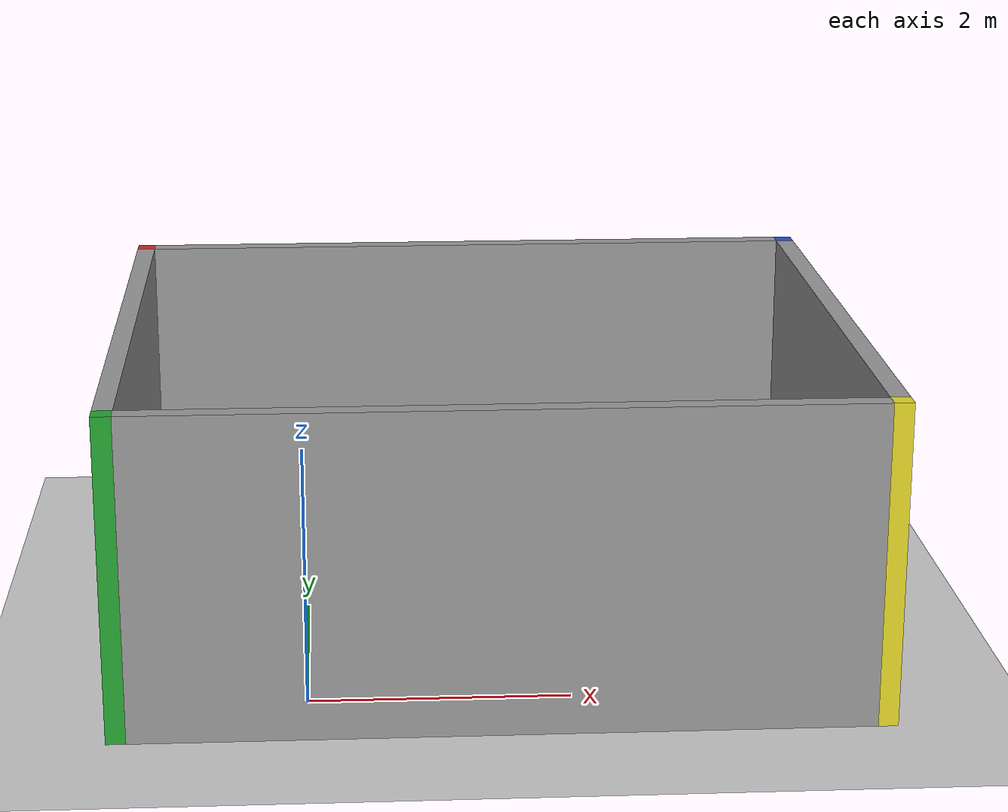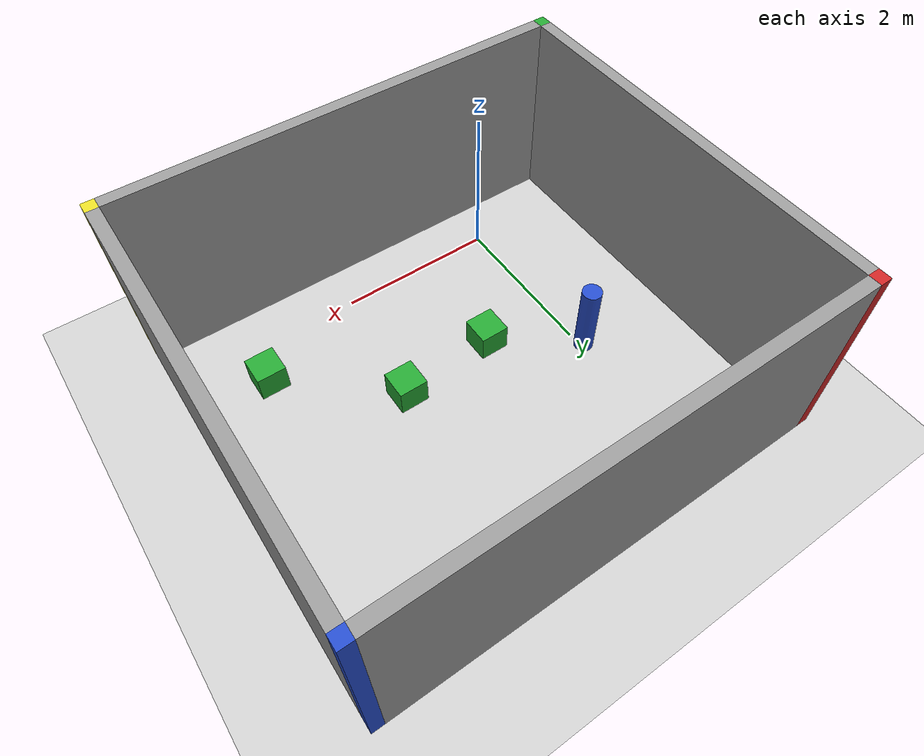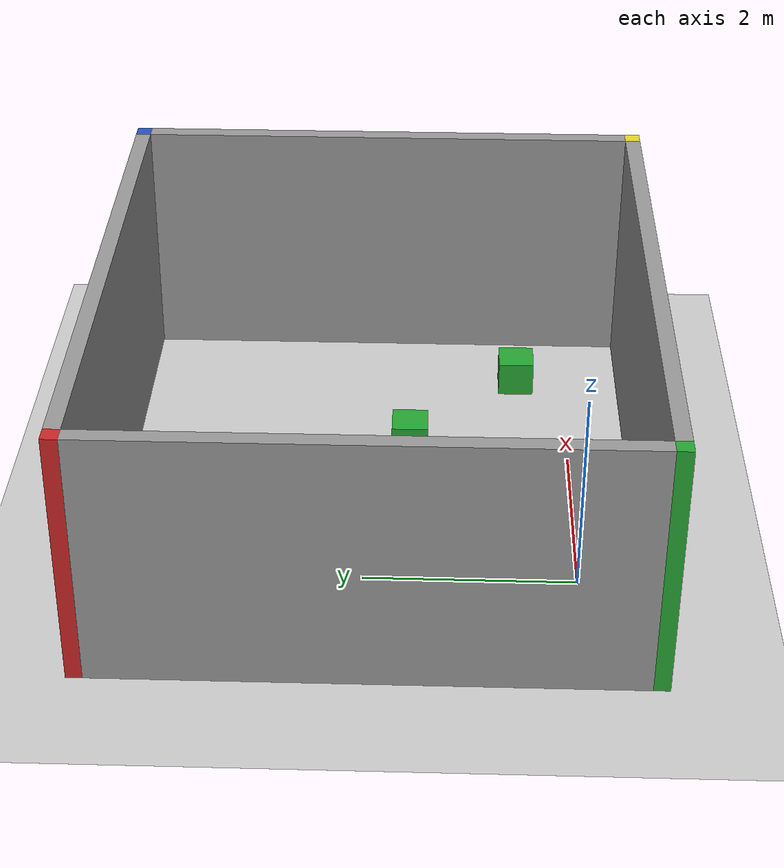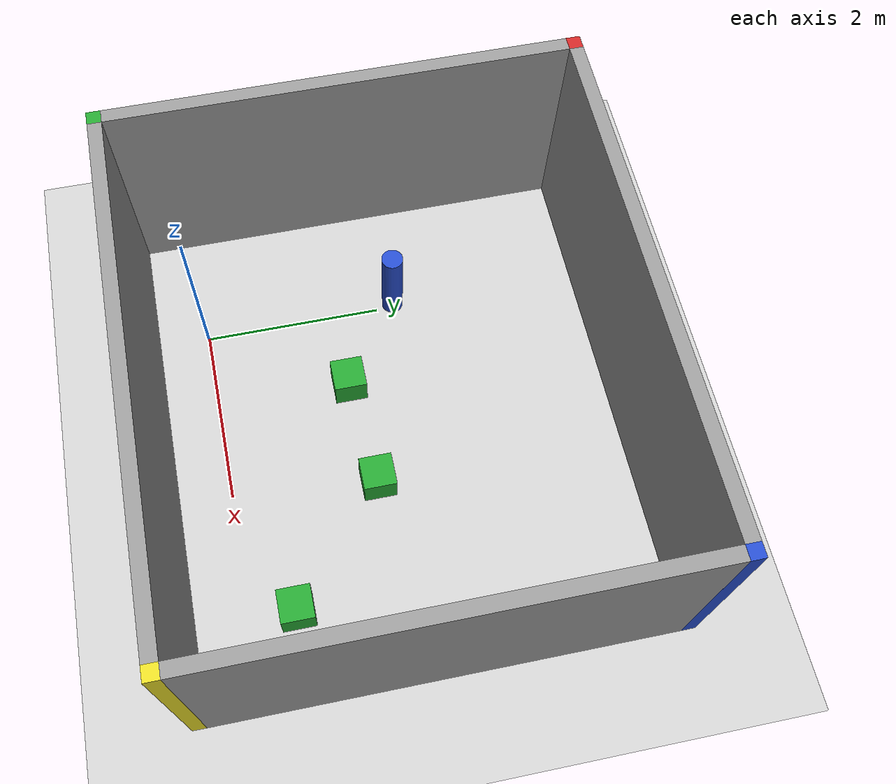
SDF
<sdf version='1.7'>
  <world name='default'>
    <light name='sun' type='directional'>
      <cast_shadows>1</cast_shadows>
      <pose>0 0 10 0 -0 0</pose>
      <diffuse>0.8 0.8 0.8 1</diffuse>
      <specular>0.2 0.2 0.2 1</specular>
      <attenuation>
        <range>1000</range>
        <constant>0.9</constant>
        <linear>0.01</linear>
        <quadratic>0.001</quadratic>
      </attenuation>
      <direction>-0.5 0.1 -0.9</direction>
      <spot>
        <inner_angle>0</inner_angle>
        <outer_angle>0</outer_angle>
        <falloff>0</falloff>
      </spot>
    </light>
    <model name='ground_plane'>
      <static>1</static>
      <link name='link'>
        <collision name='collision'>
          <geometry>
            <plane>
              <normal>0 0 1</normal>
              <size>100 100</size>
            </plane>
          </geometry>
          <surface>
            <contact>
              <collide_bitmask>65535</collide_bitmask>
              <ode/>
            </contact>
            <friction>
              <ode>
                <mu>100</mu>
                <mu2>50</mu2>
              </ode>
              <torsional>
                <ode/>
              </torsional>
            </friction>
            <bounce/>
          </surface>
          <max_contacts>10</max_contacts>
        </collision>
        <visual name='visual'>
          <cast_shadows>0</cast_shadows>
          <geometry>
            <plane>
              <normal>0 0 1</normal>
              <size>100 100</size>
            </plane>
          </geometry>
          <material>
            <script>
              <uri>file://media/materials/scripts/gazebo.material</uri>
              <name>Gazebo/FlatBeige</name>
            </script>
          </material>
        </visual>
        <self_collide>0</self_collide>
        <enable_wind>0</enable_wind>
        <kinematic>0</kinematic>
      </link>
    </model>
    <gravity>0 0 -9.8</gravity>
    <magnetic_field>6e-06 2.3e-05 -4.2e-05</magnetic_field>
    <atmosphere type='adiabatic'/>
    <physics type='ode'>
      <max_step_size>0.001</max_step_size>
      <real_time_factor>1</real_time_factor>
      <real_time_update_rate>1000</real_time_update_rate>
    </physics>
    <scene>
      <ambient>0.4 0.4 0.4 1</ambient>
      <background>0.7 0.7 0.7 1</background>
      <shadows>1</shadows>
    </scene>
    <wind/>
    <spherical_coordinates>
      <surface_model>EARTH_WGS84</surface_model>
      <latitude_deg>0</latitude_deg>
      <longitude_deg>0</longitude_deg>
      <elevation>0</elevation>
      <heading_deg>0</heading_deg>
    </spherical_coordinates>
    <model name='boundary_walls'>
      <static>1</static>

      <!-- 底边墙 (y = 4.45) -->
      <link name='Wall_Bottom'>
        <pose>1.45 4.45 0 0 0 0</pose>
        <collision name='collision'>
          <geometry>
            <box>
              <size>5.55 0.15 2.5</size>
            </box>
          </geometry>
          <pose>0 0 1.25 0 0 0</pose>
        </collision>
        <visual name='visual'>
          <pose>0 0 1.25 0 0 0</pose>
          <geometry>
            <box>
              <size>5.55 0.15 2.5</size>
            </box>
          </geometry>
          <material>
            <script>
              <uri>file://media/materials/scripts/gazebo.material</uri>
              <name>Gazebo/Grey</name>
            </script>
          </material>
        </visual>
      </link>

      <!-- 顶边墙 (y = -0.65) -->
      <link name='Wall_Top'>
        <pose>1.45 -0.65 0 0 0 0</pose>
        <collision name='collision'>
          <geometry>
            <box>
              <size>5.55 0.15 2.5</size>
            </box>
          </geometry>
          <pose>0 0 1.25 0 0 0</pose>
        </collision>
        <visual name='visual'>
          <pose>0 0 1.25 0 0 0</pose>
          <geometry>
            <box>
              <size>5.55 0.15 2.5</size>
            </box>
          </geometry>
          <material>
            <script>
              <uri>file://media/materials/scripts/gazebo.material</uri>
              <name>Gazebo/Grey</name>
            </script>
          </material>
        </visual>
      </link>

      <!-- 左边墙 (x = -1.4) -->
      <link name='Wall_Left'>
        <pose>-1.4 1.90 0 0 0 1.5708</pose>
        <collision name='collision'>
          <geometry>
            <box>
              <size>4.95 0.15 2.5</size>
            </box>
          </geometry>
          <pose>0 0 1.25 0 0 0</pose>
        </collision>
        <visual name='visual'>
          <pose>0 0 1.25 0 0 0</pose>
          <geometry>
            <box>
              <size>4.95 0.15 2.5</size>
            </box>
          </geometry>
          <material>
            <script>
              <uri>file://media/materials/scripts/gazebo.material</uri>
              <name>Gazebo/Grey</name>
            </script>
          </material>
        </visual>
      </link>

      <!-- 右边墙 (x = 4.3) -->
      <link name='Wall_Right'>
        <pose>4.3 1.9 0 0 0 1.5708</pose>
        <collision name='collision'>
          <geometry>
            <box>
              <size>4.95 0.15 2.5</size>
            </box>
          </geometry>
          <pose>0 0 1.25 0 0 0</pose>
        </collision>
        <visual name='visual'>
          <pose>0 0 1.25 0 0 0</pose>
          <geometry>
            <box>
              <size>4.95 0.15 2.5</size>
            </box>
          </geometry>
          <material>
            <script>
              <uri>file://media/materials/scripts/gazebo.material</uri>
              <name>Gazebo/Grey</name>
            </script>
          </material>
        </visual>
      </link>

      <!-- 左上角柱体 -->
      <link name='Corner_BottomLeft'>
        <pose>-1.4 4.45 0 0 0 0</pose>
        <collision name='collision'>
          <geometry>
            <box>
              <size>0.15 0.15 2.5</size>
            </box>
          </geometry>
          <pose>0 0 1.25 0 0 0</pose>
        </collision>
        <visual name='visual'>
          <pose>0 0 1.25 0 0 0</pose>
          <geometry>
            <box>
              <size>0.15 0.15 2.5</size>
            </box>
          </geometry>
          <material>
            <script>
              <uri>file://media/materials/scripts/gazebo.material</uri>
              <name>Gazebo/Red</name>
            </script>
          </material>
        </visual>
      </link>

      <!-- 右上角柱体 -->
      <link name='Corner_BottomRight'>
        <pose>4.3 4.45 0 0 0 0</pose>
        <collision name='collision'>
          <geometry>
            <box>
              <size>0.15 0.15 2.5</size>
            </box>
          </geometry>
          <pose>0 0 1.25 0 0 0</pose>
        </collision>
        <visual name='visual'>
          <pose>0 0 1.25 0 0 0</pose>
          <geometry>
            <box>
              <size>0.15 0.15 2.5</size>
            </box>
          </geometry>
          <material>
            <script>
              <uri>file://media/materials/scripts/gazebo.material</uri>
              <name>Gazebo/Blue</name>
            </script>
          </material>
        </visual>
      </link>

      <!-- 左下角柱体 -->
      <link name='Corner_TopLeft'>
        <pose>-1.4 -0.65 0 0 0 0</pose>
        <collision name='collision'>
          <geometry>
            <box>
              <size>0.15 0.15 2.5</size>
            </box>
          </geometry>
          <pose>0 0 1.25 0 0 0</pose>
        </collision>
        <visual name='visual'>
          <pose>0 0 1.25 0 0 0</pose>
          <geometry>
            <box>
              <size>0.15 0.15 2.5</size>
            </box>
          </geometry>
          <material>
            <script>
              <uri>file://media/materials/scripts/gazebo.material</uri>
              <name>Gazebo/Green</name>
            </script>
          </material>
        </visual>
      </link>

      <!-- 右下角柱体 -->
      <link name='Corner_TopRight'>
        <pose>4.3 -0.65 0 0 0 0</pose>
        <collision name='collision'>
          <geometry>
            <box>
              <size>0.15 0.15 2.5</size>
            </box>
          </geometry>
          <pose>0 0 1.25 0 0 0</pose>
        </collision>
        <visual name='visual'>
          <pose>0 0 1.25 0 0 0</pose>
          <geometry>
            <box>
              <size>0.15 0.15 2.5</size>
            </box>
          </geometry>
          <material>
            <script>
              <uri>file://media/materials/scripts/gazebo.material</uri>
              <name>Gazebo/Yellow</name>
            </script>
          </material>
        </visual>
      </link>
    </model>

    <model name='obstacles'>
      <static>1</static>

      <!-- 圆柱障碍物 (-0.05, 2.2) -->
      <link name='obs_circle'>
        <pose>-0.05 2.2 0.5 0 0 0</pose>
        <collision name='collision'>
          <geometry>
            <cylinder>
              <radius>0.12</radius>
              <length>1.0</length>
            </cylinder>
          </geometry>
        </collision>
        <visual name='visual'>
          <geometry>
            <cylinder>
              <radius>0.12</radius>
              <length>1.0</length>
            </cylinder>
          </geometry>
          <material>
            <script>
              <uri>file://media/materials/scripts/gazebo.material</uri>
              <name>Gazebo/Blue</name>
            </script>
          </material>
        </visual>
      </link>

      <!-- 方形障碍物1 (0.93, 1.5) -->
      <link name='obs_square1'>
        <pose>0.93 1.5 0.18 0 0 0</pose>
        <collision name='collision'>
          <geometry>
            <box>
              <size>0.36 0.36 0.36</size>
            </box>
          </geometry>
        </collision>
        <visual name='visual'>
          <geometry>
            <box>
              <size>0.36 0.36 0.36</size>
            </box>
          </geometry>
          <material>
            <script>
              <uri>file://media/materials/scripts/gazebo.material</uri>
              <name>Gazebo/Green</name>
            </script>
          </material>
        </visual>
      </link>

      <!-- 方形障碍物2 (2.15, 1.6) -->
      <link name='obs_square2'>
        <pose>2.15 1.6 0.18 0 0 0</pose>
        <collision name='collision'>
          <geometry>
            <box>
              <size>0.36 0.36 0.36</size>
            </box>
          </geometry>
        </collision>
        <visual name='visual'>
          <geometry>
            <box>
              <size>0.36 0.36 0.36</size>
            </box>
          </geometry>
          <material>
            <script>
              <uri>file://media/materials/scripts/gazebo.material</uri>
              <name>Gazebo/Green</name>
            </script>
          </material>
        </visual>
      </link>

      <!-- 方形障碍物3 (3.4, 0.5) -->
      <link name='obs_square3'>
        <pose>3.4 0.5 0.18 0 0 0</pose>
        <collision name='collision'>
          <geometry>
            <box>
              <size>0.36 0.36 0.36</size>
            </box>
          </geometry>
        </collision>
        <visual name='visual'>
          <geometry>
            <box>
              <size>0.36 0.36 0.36</size>
            </box>
          </geometry>
          <material>
            <script>
              <uri>file://media/materials/scripts/gazebo.material</uri>
              <name>Gazebo/Green</name>
            </script>
          </material>
        </visual>
      </link>
    </model>
    <gui fullscreen='0'>
      <camera name='user_camera'>
        <pose>0.959603 -0.417519 13.7824 3.7e-05 1.5698 1.52605</pose>
        <view_controller>orbit</view_controller>
        <projection_type>perspective</projection_type>
      </camera>
    </gui>
  </world>
</sdf>
